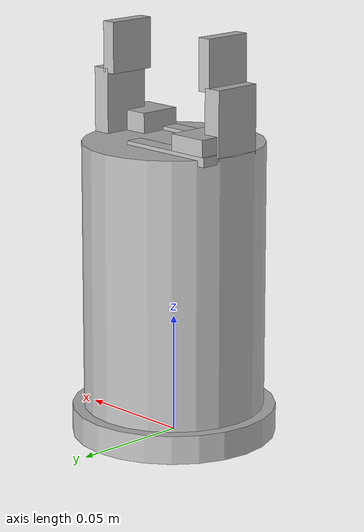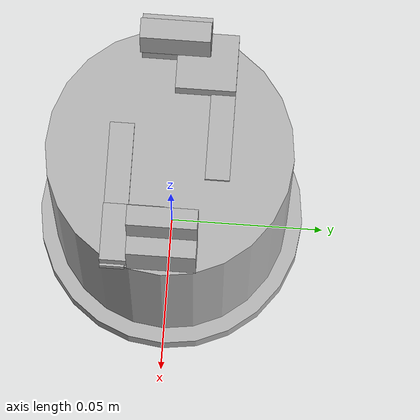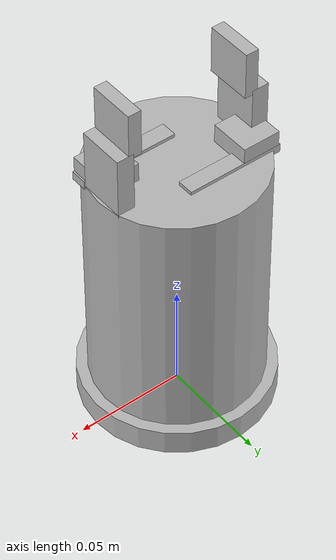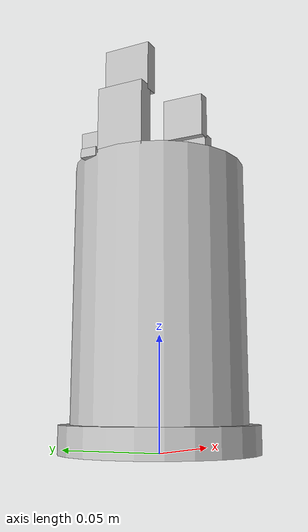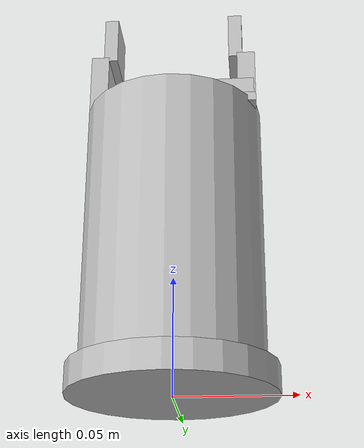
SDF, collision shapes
<?xml version="1.0" ?>
<sdf version="1.9">
  <model name="Robotiq Hand-E">

    <link name="hande_base_link">
      <inertial>
        <mass>1</mass>
        <inertia>
          <ixx>0.1</ixx>
          <ixy>0</ixy>
          <ixz>0</ixz>
          <iyy>0.1</iyy>
          <iyz>0</iyz>
          <izz>0.1</izz>
        </inertia>
      </inertial>
      <visual name="hande_base_visual">
        <geometry>
          <mesh>
            <uri>hande_base_visual.glb</uri>
          </mesh>
        </geometry>
      </visual>
      <collision name="body_collider_cylinder">
        <pose>0.0 0.0 0.06855 3.141593 -0.0 1.570796</pose>
        <geometry>
          <cylinder>
            <radius>0.038</radius>
            <length>0.1131</length>
          </cylinder>
        </geometry>
      </collision>
      <collision name="cylinder003_collider_cylinder">
        <pose>0.0 0.0 0.006 0.0 0.0 0.0</pose>
        <geometry>
          <cylinder>
            <radius>0.043</radius>
            <length>0.012</length>
          </cylinder>
        </geometry>
      </collision>
    </link>

    <link name="hande_finger_link_l">
      <inertial>
        <mass>0.2</mass>
        <inertia>
          <ixx>0.0001</ixx>
          <ixy>0</ixy>
          <ixz>0</ixz>
          <iyy>0.00009</iyy>
          <iyz>0</iyz>
          <izz>0.00003</izz>
        </inertia>
      </inertial>
      <visual name="hande_finger_visual">
        <geometry>
          <mesh>
            <uri>hande_finger_visual.glb</uri>
          </mesh>
        </geometry>
      </visual>
      <collision name="finger_collider_box">
        <pose>0.032595 -1e-05 0.138138 0.0 0.0 0.0</pose>
        <geometry>
          <box>
            <size>0.007839 0.021 0.028622</size>
          </box>
        </geometry>
      </collision>
      <collision name="finger_collider_box.001">
        <pose>0.028 -1e-05 0.16145 0.0 0.0 0.0</pose>
        <geometry>
          <box>
            <size>0.006 0.021 0.021498</size>
          </box>
        </geometry>
      </collision>
      <collision name="finger_collider_box.002">
        <pose>0.014354 -0.015 0.124725 0.0 0.0 0.0</pose>
        <geometry>
          <box>
            <size>0.044319 0.0075 0.003949</size>
          </box>
        </geometry>
      </collision>
      <collision name="finger_collider_box.003">
        <pose>0.027046 -0.00954 0.129064 0.0 0.0 0.0</pose>
        <geometry>
          <box>
            <size>0.017387 0.018419 0.009271</size>
          </box>
        </geometry>
      </collision>
    </link>

    <link name="hande_finger_link_r">
      <inertial>
        <mass>0.2</mass>
        <inertia>
          <ixx>0.0001</ixx>
          <ixy>0</ixy>
          <ixz>0</ixz>
          <iyy>0.00009</iyy>
          <iyz>0</iyz>
          <izz>0.00003</izz>
        </inertia>
      </inertial>
      <visual name="hande_finger_visual">
        <pose>0 0 0 0 0 3.14159</pose>
        <geometry>
          <mesh>
            <uri>hande_finger_visual.glb</uri>
          </mesh>
        </geometry>
      </visual>
      <collision name="finger_collider_box">
        <pose>-0.032595 -1e-05 0.138138 0.0 0.0 0.0</pose>
        <geometry>
          <box>
            <size>0.007839 0.021 0.028622</size>
          </box>
        </geometry>
      </collision>
      <collision name="finger_collider_box.001">
        <pose>-0.028 -1e-05 0.16145 0.0 0.0 0.0</pose>
        <geometry>
          <box>
            <size>0.006 0.021 0.021498</size>
          </box>
        </geometry>
      </collision>
      <collision name="finger_collider_box.002">
        <pose>-0.014354 0.015 0.124725 0.0 0.0 0.0</pose>
        <geometry>
          <box>
            <size>0.044319 0.0075 0.003949</size>
          </box>
        </geometry>
      </collision>
      <collision name="finger_collider_box.003">
        <pose>-0.027046 0.00954 0.129064 0.0 0.0 0.0</pose>
        <geometry>
          <box>
            <size>0.017387 0.018419 0.009271</size>
          </box>
        </geometry>
      </collision>
    </link>

    <joint name="finger1" type="prismatic">
      <parent>hande_base_link</parent>
      <child>hande_finger_link_l</child>
      <pose>0 0 0 0 0 0</pose>
      <axis>
        <xyz>-1 0 0</xyz>
        <limit>
          <lower>0</lower>
          <upper>0.025</upper>
        </limit>
       </axis>
    </joint>
    <joint name="finger2" type="prismatic">
      <parent>hande_base_link</parent>
      <child>hande_finger_link_r</child>
      <pose>0 0 0 0 0 0</pose>
      <axis>
        <xyz>1 0 0</xyz>
        <limit>
          <lower>0</lower>
          <upper>0.025</upper>
        </limit>
       </axis>
    </joint>
    <frame name='tcp' attached_to='hande_base_link' intrinsic:create_entity='true'>
      <pose>0 0 0.172 0 0 0</pose>
    </frame>
  </model>
</sdf>
